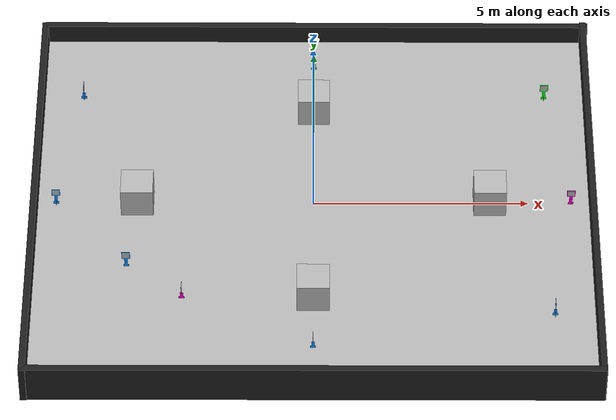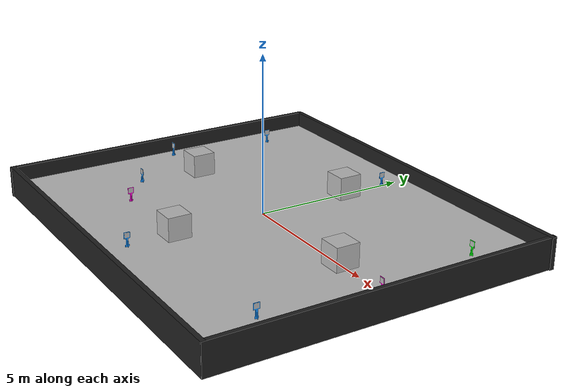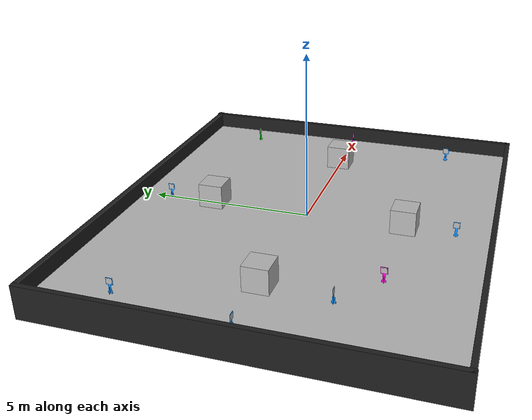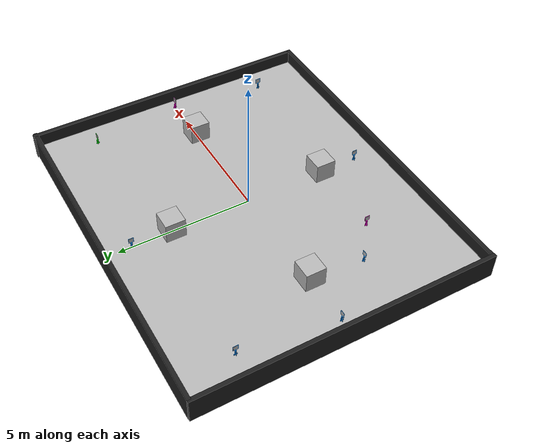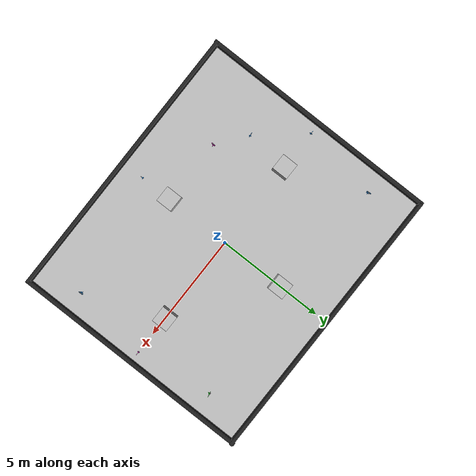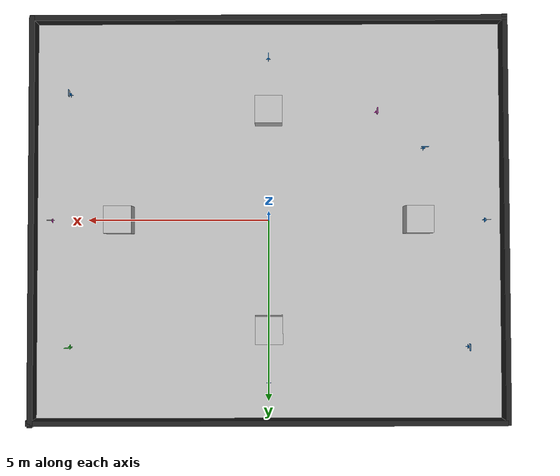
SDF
<sdf version="1.4">
  <world name="default">
    <scene>
      <ambient>0.8 0.8 0.8 1</ambient>
      <background>0.7 0.7 0.7 1</background>
      <shadows>true</shadows>
    </scene>

    <!-- A global light source -->
    <include>
      <uri>model://sun</uri>
      <pose> -2.0 2.0 2.0 0 0 0</pose>
    </include>

  <!-- Piso da sala - circuito -->
    <include>
      <uri>model://sala404_circuito/pisosala</uri>
      <pose> 0 0 0 0 0 -1.57</pose>
    </include>

 <!-- cat -->
    <include>
      <uri>model://sala404_circuito/objeto/cat</uri>
      <pose> 4.1 0 0.375 0 0 1.57</pose>
    </include>

 <!-- bird -->
    <include>
      <uri>model://sala404_circuito/objeto/bird</uri>
      <pose> -4.1 0 0.375 0 0 1.57</pose>
    </include>

 <!-- bicycle -->
    <include>
      <uri>model://sala404_circuito/objeto/bicycle</uri>
      <pose> 0 3 0.375 0 0 1.57</pose>
    </include>

<!-- dog -->
    <include>
      <uri>model://sala404_circuito/objeto/dog</uri>
      <pose> 0 -3 0.375 0 0 1.57</pose>
    </include>

 <!-- creeper11 -->
    <include>
      <uri>model://sala404_circuito/creeper/creeper11</uri>
      <pose> 0 4.5 0.13 0 0 0</pose>
    </include>
 <!-- creeper12 -->
    <include>
      <uri>model://sala404_circuito/creeper/creeper12</uri>
      <pose> -6 0 0.13 0 0 1.57</pose>
    </include>
 <!-- creeper13 -->
    <include>
      <uri>model://sala404_circuito/creeper/creeper13</uri>
      <pose> 5.5 -3.5 0.13 0 0 0</pose>
    </include>

 <!-- creeper21 -->
    <include>
      <uri>model://sala404_circuito/creeper/creeper21</uri>
      <pose> 6 0 0.13 0 0 1.57</pose>
    </include>
 <!-- creeper22 -->
    <include>
      <uri>model://sala404_circuito/creeper/creeper22</uri>
      <pose> -5.5 3.5 0.13 0 0 0</pose>
    </include>
 <!-- creeper23 -->
    <include>
      <uri>model://sala404_circuito/creeper/creeper23</uri>
      <pose> -3 -3 0.13 0 0 0</pose>
    </include>

 <!-- creeper31 -->
    <include>
      <uri>model://sala404_circuito/creeper/creeper31</uri>
      <pose> 5.5 3.5 0.13 0 0 1.57</pose>
    </include>
 <!-- creeper32 -->
    <include>
      <uri>model://sala404_circuito/creeper/creeper32</uri>
      <pose> 0 -4.5 0.13 0 0 0</pose>
    </include>
 <!-- creeper33 -->
    <include>
      <uri>model://sala404_circuito/creeper/creeper33</uri>
      <pose> -4.3 -2 0.13 0 0 1.57</pose>
    </include>

<!-- mapa sala -->
    <include>
      <uri>model://sala404_circuito/parede</uri>
      <pose> 0 0 0 0 0 0</pose>
    </include>

    <physics type="ode">
      <real_time_update_rate>1000.0</real_time_update_rate>
      <max_step_size>0.001</max_step_size>
      <real_time_factor>1</real_time_factor>
      <ode>
        <solver>
          <type>quick</type>
          <iters>150</iters>
          <precon_iters>0</precon_iters>
          <sor>1.400000</sor>
          <use_dynamic_moi_rescaling>1</use_dynamic_moi_rescaling>
        </solver>
        <constraints>
          <cfm>0.00001</cfm>
          <erp>0.2</erp>
          <contact_max_correcting_vel>2000.000000</contact_max_correcting_vel>
          <contact_surface_layer>0.01000</contact_surface_layer>
        </constraints>
      </ode>
    </physics>

    <gui fullscreen='0'>
      <camera name='user_camera'>
        <pose frame=''>0.238775 -6.8831 10.8485 -0 0.979642 1.5602</pose>
        <view_controller>orbit</view_controller>
        <projection_type>perspective</projection_type>
      </camera>
    </gui>

  </world>

</sdf>

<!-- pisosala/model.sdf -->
<sdf version="1.6">
  <model name="pisosala_forca">
    <static>true</static>
    <link name="course_link">
      <collision name="course_collision">
        <geometry>
          <plane>
            <normal>0 0 1</normal>
            <size>10 13</size>
          </plane>
        </geometry>
        <surface>
          <friction>
            <ode>
              <mu>100</mu>
              <mu2>50</mu2>
            </ode>
          </friction>
        </surface>
      </collision>
      <visual name="course_visual">
        <cast_shadows>false</cast_shadows>
        <geometry>
          <mesh>
            <uri>model://forca/pisosala/materials/scripts/piso.dae</uri>
            <scale>1 1 1</scale>
          </mesh>
        </geometry>
      </visual>
    </link>
  </model>
</sdf>

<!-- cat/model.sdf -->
<sdf version="1.6">
  <model name="cat">
    <static>true</static>
    <link name="box">
      <pose>0 0 0 0 0 0</pose>
      <collision name="collision">
        <geometry>
          <box>
            <size>0.75 0.75 0.75</size>
          </box>
        </geometry>
      </collision>
      <visual name="visual">
        <geometry>
          <box>
            <size>0.75 0.75 0.75</size>
          </box>
        </geometry>
        <material>
          <script>
            <uri>model://sala404_circuito/objeto/cat/materials/scripts</uri>
            <uri>model://sala404_circuito/objeto/cat/materials/textures</uri>
            <name>cat</name>
          </script>
        </material>
      </visual>
    </link>
  </model>
</sdf>

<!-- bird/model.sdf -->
<sdf version="1.6">
  <model name="bird">
    <static>true</static>
    <link name="box">
      <pose>0 0 0 0 0 0</pose>
      <collision name="collision">
        <geometry>
          <box>
            <size>0.75 0.75 0.75</size>
          </box>
        </geometry>
      </collision>
      <visual name="visual">
        <geometry>
          <box>
            <size>0.75 0.75 0.75</size>
          </box>
        </geometry>
        <material>
          <script>
            <uri>model://sala404_circuito/objeto/bird/materials/scripts</uri>
            <uri>model://sala404_circuito/objeto/bird/materials/textures</uri>
            <name>bird</name>
          </script>
        </material>
      </visual>
    </link>
  </model>
</sdf>

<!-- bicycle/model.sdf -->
<sdf version="1.6">
  <model name="bicycle">
    <static>true</static>
    <link name="box">
      <pose>0 0 0 0 0 0</pose>
      <collision name="collision">
        <geometry>
          <box>
            <size>0.75 0.75 0.75</size>
          </box>
        </geometry>
      </collision>
      <visual name="visual">
        <geometry>
          <box>
            <size>0.75 0.75 0.75</size>
          </box>
        </geometry>
        <material>
          <script>
            <uri>model://sala404_circuito/objeto/bicycle/materials/scripts</uri>
            <uri>model://sala404_circuito/objeto/bicycle/materials/textures</uri>
            <name>bicycle</name>
          </script>
        </material>
      </visual>
    </link>
  </model>
</sdf>

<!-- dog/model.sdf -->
<sdf version="1.6">
  <model name="dog">
    <static>true</static>
    <link name="box">
      <pose>0 0 0 0 0 0</pose>
      <collision name="collision">
        <geometry>
          <box>
            <size>0.75 0.75 0.75</size>
          </box>
        </geometry>
      </collision>
      <visual name="visual">
        <geometry>
          <box>
            <size>0.75 0.75 0.75</size>
          </box>
        </geometry>
        <material>
          <script>
            <uri>model://sala404_circuito/objeto/dog/materials/scripts</uri>
            <uri>model://sala404_circuito/objeto/dog/materials/textures</uri>
            <name>dog</name>
          </script>
        </material>
      </visual>
    </link>
  </model>
</sdf>

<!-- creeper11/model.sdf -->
<sdf version='1.6'>
  <model name='creeper01'>
    <link name='link_0'>
      <inertial>
        <mass>1</mass>
        <inertia>
          <ixx>0.166667</ixx>
          <ixy>0</ixy>
          <ixz>0</ixz>
          <iyy>0.166667</iyy>
          <iyz>0</iyz>
          <izz>0.166667</izz>
        </inertia>
      </inertial>
      <pose frame=''>5e-06 -5e-06 0 0 -0 0</pose>
      <visual name='visual'>
        <pose frame=''>0 0 0 0 -0 0</pose>
        <geometry>
          <mesh>
             <uri>model://sala404_circuito/creeper/creeper11/materials/textures/Creeper.dae</uri>
            <scale>1 1 1</scale>
          </mesh>
        </geometry>
        <material>
          <lighting>1</lighting>
        </material>
        <transparency>0</transparency>
        <cast_shadows>1</cast_shadows>
      </visual>
      <collision name='collision'>
        <laser_retro>0</laser_retro>
        <max_contacts>10</max_contacts>
        <pose frame=''>0 0 0 0 -0 0</pose>
        <geometry>
          <mesh>
             <uri>model://sala404_circuito/creeper/creeper11/materials/textures/Creeper.dae</uri>
            <scale>1 1 1</scale>
          </mesh>
        </geometry>
        <surface>
          <friction>
            <ode>
              <mu>1</mu>
              <mu2>1</mu2>
              <fdir1>0 0 0</fdir1>
              <slip1>0</slip1>
              <slip2>0</slip2>
            </ode>
            <torsional>
              <coefficient>1</coefficient>
              <patch_radius>0</patch_radius>
              <surface_radius>0</surface_radius>
              <use_patch_radius>1</use_patch_radius>
              <ode>
                <slip>0</slip>
              </ode>
            </torsional>
          </friction>
          <bounce>
            <restitution_coefficient>0</restitution_coefficient>
            <threshold>1e+06</threshold>
          </bounce>
          <contact>
            <collide_without_contact>0</collide_without_contact>
            <collide_without_contact_bitmask>1</collide_without_contact_bitmask>
            <collide_bitmask>1</collide_bitmask>
            <ode>
              <soft_cfm>0</soft_cfm>
              <soft_erp>0.2</soft_erp>
              <kp>1e+13</kp>
              <kd>1</kd>
              <max_vel>0.01</max_vel>
              <min_depth>0</min_depth>
            </ode>
            <bullet>
              <split_impulse>1</split_impulse>
              <split_impulse_penetration_threshold>-0.01</split_impulse_penetration_threshold>
              <soft_cfm>0</soft_cfm>
              <soft_erp>0.2</soft_erp>
              <kp>1e+13</kp>
              <kd>1</kd>
            </bullet>
          </contact>
        </surface>
      </collision>
    </link>
    <static>0</static>
    <allow_auto_disable>1</allow_auto_disable>
  </model>
</sdf>

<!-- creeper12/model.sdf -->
<sdf version='1.6'>
  <model name='creeper02'>
    <link name='link_0'>
      <inertial>
        <mass>1</mass>
        <inertia>
          <ixx>0.166667</ixx>
          <ixy>0</ixy>
          <ixz>0</ixz>
          <iyy>0.166667</iyy>
          <iyz>0</iyz>
          <izz>0.166667</izz>
        </inertia>
      </inertial>
      <pose frame=''>5e-06 -5e-06 0 0 -0 0</pose>
      <visual name='visual'>
        <pose frame=''>0 0 0 0 -0 0</pose>
        <geometry>
          <mesh>
             <uri>model://sala404_circuito/creeper/creeper12/materials/textures/Creeper.dae</uri>
            <scale>1 1 1</scale>
          </mesh>
        </geometry>
        <material>
          <lighting>1</lighting>
        </material>
        <transparency>0</transparency>
        <cast_shadows>1</cast_shadows>
      </visual>
      <collision name='collision'>
        <laser_retro>0</laser_retro>
        <max_contacts>10</max_contacts>
        <pose frame=''>0 0 0 0 -0 0</pose>
        <geometry>
          <mesh>
             <uri>model://sala404_circuito/creeper/creeper12/materials/textures/Creeper.dae</uri>
            <scale>1 1 1</scale>
          </mesh>
        </geometry>
        <surface>
          <friction>
            <ode>
              <mu>1</mu>
              <mu2>1</mu2>
              <fdir1>0 0 0</fdir1>
              <slip1>0</slip1>
              <slip2>0</slip2>
            </ode>
            <torsional>
              <coefficient>1</coefficient>
              <patch_radius>0</patch_radius>
              <surface_radius>0</surface_radius>
              <use_patch_radius>1</use_patch_radius>
              <ode>
                <slip>0</slip>
              </ode>
            </torsional>
          </friction>
          <bounce>
            <restitution_coefficient>0</restitution_coefficient>
            <threshold>1e+06</threshold>
          </bounce>
          <contact>
            <collide_without_contact>0</collide_without_contact>
            <collide_without_contact_bitmask>1</collide_without_contact_bitmask>
            <collide_bitmask>1</collide_bitmask>
            <ode>
              <soft_cfm>0</soft_cfm>
              <soft_erp>0.2</soft_erp>
              <kp>1e+13</kp>
              <kd>1</kd>
              <max_vel>0.01</max_vel>
              <min_depth>0</min_depth>
            </ode>
            <bullet>
              <split_impulse>1</split_impulse>
              <split_impulse_penetration_threshold>-0.01</split_impulse_penetration_threshold>
              <soft_cfm>0</soft_cfm>
              <soft_erp>0.2</soft_erp>
              <kp>1e+13</kp>
              <kd>1</kd>
            </bullet>
          </contact>
        </surface>
      </collision>
    </link>
    <static>0</static>
    <allow_auto_disable>1</allow_auto_disable>
  </model>
</sdf>

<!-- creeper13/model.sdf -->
<sdf version='1.6'>
  <model name='creeper03'>
    <link name='link_0'>
      <inertial>
        <mass>1</mass>
        <inertia>
          <ixx>0.166667</ixx>
          <ixy>0</ixy>
          <ixz>0</ixz>
          <iyy>0.166667</iyy>
          <iyz>0</iyz>
          <izz>0.166667</izz>
        </inertia>
      </inertial>
      <pose frame=''>5e-06 -5e-06 0 0 -0 0</pose>
      <visual name='visual'>
        <pose frame=''>0 0 0 0 -0 0</pose>
        <geometry>
          <mesh>
             <uri>model://sala404_circuito/creeper/creeper13/materials/textures/Creeper.dae</uri>
            <scale>1 1 1</scale>
          </mesh>
        </geometry>
        <material>
          <lighting>1</lighting>
        </material>
        <transparency>0</transparency>
        <cast_shadows>1</cast_shadows>
      </visual>
      <collision name='collision'>
        <laser_retro>0</laser_retro>
        <max_contacts>10</max_contacts>
        <pose frame=''>0 0 0 0 -0 0</pose>
        <geometry>
          <mesh>
             <uri>model://sala404_circuito/creeper/creeper13/materials/textures/Creeper.dae</uri>
            <scale>1 1 1</scale>
          </mesh>
        </geometry>
        <surface>
          <friction>
            <ode>
              <mu>1</mu>
              <mu2>1</mu2>
              <fdir1>0 0 0</fdir1>
              <slip1>0</slip1>
              <slip2>0</slip2>
            </ode>
            <torsional>
              <coefficient>1</coefficient>
              <patch_radius>0</patch_radius>
              <surface_radius>0</surface_radius>
              <use_patch_radius>1</use_patch_radius>
              <ode>
                <slip>0</slip>
              </ode>
            </torsional>
          </friction>
          <bounce>
            <restitution_coefficient>0</restitution_coefficient>
            <threshold>1e+06</threshold>
          </bounce>
          <contact>
            <collide_without_contact>0</collide_without_contact>
            <collide_without_contact_bitmask>1</collide_without_contact_bitmask>
            <collide_bitmask>1</collide_bitmask>
            <ode>
              <soft_cfm>0</soft_cfm>
              <soft_erp>0.2</soft_erp>
              <kp>1e+13</kp>
              <kd>1</kd>
              <max_vel>0.01</max_vel>
              <min_depth>0</min_depth>
            </ode>
            <bullet>
              <split_impulse>1</split_impulse>
              <split_impulse_penetration_threshold>-0.01</split_impulse_penetration_threshold>
              <soft_cfm>0</soft_cfm>
              <soft_erp>0.2</soft_erp>
              <kp>1e+13</kp>
              <kd>1</kd>
            </bullet>
          </contact>
        </surface>
      </collision>
    </link>
    <static>0</static>
    <allow_auto_disable>1</allow_auto_disable>
  </model>
</sdf>

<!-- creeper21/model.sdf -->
<sdf version='1.6'>
  <model name='creeper03'>
    <link name='link_0'>
      <inertial>
        <mass>1</mass>
        <inertia>
          <ixx>0.166667</ixx>
          <ixy>0</ixy>
          <ixz>0</ixz>
          <iyy>0.166667</iyy>
          <iyz>0</iyz>
          <izz>0.166667</izz>
        </inertia>
      </inertial>
      <pose frame=''>5e-06 -5e-06 0 0 -0 0</pose>
      <visual name='visual'>
        <pose frame=''>0 0 0 0 -0 0</pose>
        <geometry>
          <mesh>
             <uri>model://sala404_circuito/creeper/creeper21/materials/textures/Creeper.dae</uri>
            <scale>1 1 1</scale>
          </mesh>
        </geometry>
        <material>
          <lighting>1</lighting>
        </material>
        <transparency>0</transparency>
        <cast_shadows>1</cast_shadows>
      </visual>
      <collision name='collision'>
        <laser_retro>0</laser_retro>
        <max_contacts>10</max_contacts>
        <pose frame=''>0 0 0 0 -0 0</pose>
        <geometry>
          <mesh>
             <uri>model://sala404_circuito/creeper/creeper21/materials/textures/Creeper.dae</uri>
            <scale>1 1 1</scale>
          </mesh>
        </geometry>
        <surface>
          <friction>
            <ode>
              <mu>1</mu>
              <mu2>1</mu2>
              <fdir1>0 0 0</fdir1>
              <slip1>0</slip1>
              <slip2>0</slip2>
            </ode>
            <torsional>
              <coefficient>1</coefficient>
              <patch_radius>0</patch_radius>
              <surface_radius>0</surface_radius>
              <use_patch_radius>1</use_patch_radius>
              <ode>
                <slip>0</slip>
              </ode>
            </torsional>
          </friction>
          <bounce>
            <restitution_coefficient>0</restitution_coefficient>
            <threshold>1e+06</threshold>
          </bounce>
          <contact>
            <collide_without_contact>0</collide_without_contact>
            <collide_without_contact_bitmask>1</collide_without_contact_bitmask>
            <collide_bitmask>1</collide_bitmask>
            <ode>
              <soft_cfm>0</soft_cfm>
              <soft_erp>0.2</soft_erp>
              <kp>1e+13</kp>
              <kd>1</kd>
              <max_vel>0.01</max_vel>
              <min_depth>0</min_depth>
            </ode>
            <bullet>
              <split_impulse>1</split_impulse>
              <split_impulse_penetration_threshold>-0.01</split_impulse_penetration_threshold>
              <soft_cfm>0</soft_cfm>
              <soft_erp>0.2</soft_erp>
              <kp>1e+13</kp>
              <kd>1</kd>
            </bullet>
          </contact>
        </surface>
      </collision>
    </link>
    <static>0</static>
    <allow_auto_disable>1</allow_auto_disable>
  </model>
</sdf>

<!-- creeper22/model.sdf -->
<sdf version='1.6'>
  <model name='creeper03'>
    <link name='link_0'>
      <inertial>
        <mass>1</mass>
        <inertia>
          <ixx>0.166667</ixx>
          <ixy>0</ixy>
          <ixz>0</ixz>
          <iyy>0.166667</iyy>
          <iyz>0</iyz>
          <izz>0.166667</izz>
        </inertia>
      </inertial>
      <pose frame=''>5e-06 -5e-06 0 0 -0 0</pose>
      <visual name='visual'>
        <pose frame=''>0 0 0 0 -0 0</pose>
        <geometry>
          <mesh>
             <uri>model://sala404_circuito/creeper/creeper22/materials/textures/Creeper.dae</uri>
            <scale>1 1 1</scale>
          </mesh>
        </geometry>
        <material>
          <lighting>1</lighting>
        </material>
        <transparency>0</transparency>
        <cast_shadows>1</cast_shadows>
      </visual>
      <collision name='collision'>
        <laser_retro>0</laser_retro>
        <max_contacts>10</max_contacts>
        <pose frame=''>0 0 0 0 -0 0</pose>
        <geometry>
          <mesh>
             <uri>model://sala404_circuito/creeper/creeper22/materials/textures/Creeper.dae</uri>
            <scale>1 1 1</scale>
          </mesh>
        </geometry>
        <surface>
          <friction>
            <ode>
              <mu>1</mu>
              <mu2>1</mu2>
              <fdir1>0 0 0</fdir1>
              <slip1>0</slip1>
              <slip2>0</slip2>
            </ode>
            <torsional>
              <coefficient>1</coefficient>
              <patch_radius>0</patch_radius>
              <surface_radius>0</surface_radius>
              <use_patch_radius>1</use_patch_radius>
              <ode>
                <slip>0</slip>
              </ode>
            </torsional>
          </friction>
          <bounce>
            <restitution_coefficient>0</restitution_coefficient>
            <threshold>1e+06</threshold>
          </bounce>
          <contact>
            <collide_without_contact>0</collide_without_contact>
            <collide_without_contact_bitmask>1</collide_without_contact_bitmask>
            <collide_bitmask>1</collide_bitmask>
            <ode>
              <soft_cfm>0</soft_cfm>
              <soft_erp>0.2</soft_erp>
              <kp>1e+13</kp>
              <kd>1</kd>
              <max_vel>0.01</max_vel>
              <min_depth>0</min_depth>
            </ode>
            <bullet>
              <split_impulse>1</split_impulse>
              <split_impulse_penetration_threshold>-0.01</split_impulse_penetration_threshold>
              <soft_cfm>0</soft_cfm>
              <soft_erp>0.2</soft_erp>
              <kp>1e+13</kp>
              <kd>1</kd>
            </bullet>
          </contact>
        </surface>
      </collision>
    </link>
    <static>0</static>
    <allow_auto_disable>1</allow_auto_disable>
  </model>
</sdf>

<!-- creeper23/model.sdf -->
<sdf version='1.6'>
  <model name='creeper03'>
    <link name='link_0'>
      <inertial>
        <mass>1</mass>
        <inertia>
          <ixx>0.166667</ixx>
          <ixy>0</ixy>
          <ixz>0</ixz>
          <iyy>0.166667</iyy>
          <iyz>0</iyz>
          <izz>0.166667</izz>
        </inertia>
      </inertial>
      <pose frame=''>5e-06 -5e-06 0 0 -0 0</pose>
      <visual name='visual'>
        <pose frame=''>0 0 0 0 -0 0</pose>
        <geometry>
          <mesh>
             <uri>model://sala404_circuito/creeper/creeper23/materials/textures/Creeper.dae</uri>
            <scale>1 1 1</scale>
          </mesh>
        </geometry>
        <material>
          <lighting>1</lighting>
        </material>
        <transparency>0</transparency>
        <cast_shadows>1</cast_shadows>
      </visual>
      <collision name='collision'>
        <laser_retro>0</laser_retro>
        <max_contacts>10</max_contacts>
        <pose frame=''>0 0 0 0 -0 0</pose>
        <geometry>
          <mesh>
             <uri>model://sala404_circuito/creeper/creeper23/materials/textures/Creeper.dae</uri>
            <scale>1 1 1</scale>
          </mesh>
        </geometry>
        <surface>
          <friction>
            <ode>
              <mu>1</mu>
              <mu2>1</mu2>
              <fdir1>0 0 0</fdir1>
              <slip1>0</slip1>
              <slip2>0</slip2>
            </ode>
            <torsional>
              <coefficient>1</coefficient>
              <patch_radius>0</patch_radius>
              <surface_radius>0</surface_radius>
              <use_patch_radius>1</use_patch_radius>
              <ode>
                <slip>0</slip>
              </ode>
            </torsional>
          </friction>
          <bounce>
            <restitution_coefficient>0</restitution_coefficient>
            <threshold>1e+06</threshold>
          </bounce>
          <contact>
            <collide_without_contact>0</collide_without_contact>
            <collide_without_contact_bitmask>1</collide_without_contact_bitmask>
            <collide_bitmask>1</collide_bitmask>
            <ode>
              <soft_cfm>0</soft_cfm>
              <soft_erp>0.2</soft_erp>
              <kp>1e+13</kp>
              <kd>1</kd>
              <max_vel>0.01</max_vel>
              <min_depth>0</min_depth>
            </ode>
            <bullet>
              <split_impulse>1</split_impulse>
              <split_impulse_penetration_threshold>-0.01</split_impulse_penetration_threshold>
              <soft_cfm>0</soft_cfm>
              <soft_erp>0.2</soft_erp>
              <kp>1e+13</kp>
              <kd>1</kd>
            </bullet>
          </contact>
        </surface>
      </collision>
    </link>
    <static>0</static>
    <allow_auto_disable>1</allow_auto_disable>
  </model>
</sdf>

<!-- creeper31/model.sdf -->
<sdf version='1.6'>
  <model name='creeper03'>
    <link name='link_0'>
      <inertial>
        <mass>1</mass>
        <inertia>
          <ixx>0.166667</ixx>
          <ixy>0</ixy>
          <ixz>0</ixz>
          <iyy>0.166667</iyy>
          <iyz>0</iyz>
          <izz>0.166667</izz>
        </inertia>
      </inertial>
      <pose frame=''>5e-06 -5e-06 0 0 -0 0</pose>
      <visual name='visual'>
        <pose frame=''>0 0 0 0 -0 0</pose>
        <geometry>
          <mesh>
            <uri>model://sala404_circuito/creeper/creeper31/materials/textures/Creeper.dae</uri>
            <scale>1 1 1</scale>
          </mesh>
        </geometry>
        <material>
          <lighting>1</lighting>
        </material>
        <transparency>0</transparency>
        <cast_shadows>1</cast_shadows>
      </visual>
      <collision name='collision'>
        <laser_retro>0</laser_retro>
        <max_contacts>10</max_contacts>
        <pose frame=''>0 0 0 0 -0 0</pose>
        <geometry>
          <mesh>
             <uri>model://sala404_circuito/creeper/creeper31/materials/textures/Creeper.dae</uri>
            <scale>1 1 1</scale>
          </mesh>
        </geometry>
        <surface>
          <friction>
            <ode>
              <mu>1</mu>
              <mu2>1</mu2>
              <fdir1>0 0 0</fdir1>
              <slip1>0</slip1>
              <slip2>0</slip2>
            </ode>
            <torsional>
              <coefficient>1</coefficient>
              <patch_radius>0</patch_radius>
              <surface_radius>0</surface_radius>
              <use_patch_radius>1</use_patch_radius>
              <ode>
                <slip>0</slip>
              </ode>
            </torsional>
          </friction>
          <bounce>
            <restitution_coefficient>0</restitution_coefficient>
            <threshold>1e+06</threshold>
          </bounce>
          <contact>
            <collide_without_contact>0</collide_without_contact>
            <collide_without_contact_bitmask>1</collide_without_contact_bitmask>
            <collide_bitmask>1</collide_bitmask>
            <ode>
              <soft_cfm>0</soft_cfm>
              <soft_erp>0.2</soft_erp>
              <kp>1e+13</kp>
              <kd>1</kd>
              <max_vel>0.01</max_vel>
              <min_depth>0</min_depth>
            </ode>
            <bullet>
              <split_impulse>1</split_impulse>
              <split_impulse_penetration_threshold>-0.01</split_impulse_penetration_threshold>
              <soft_cfm>0</soft_cfm>
              <soft_erp>0.2</soft_erp>
              <kp>1e+13</kp>
              <kd>1</kd>
            </bullet>
          </contact>
        </surface>
      </collision>
    </link>
    <static>0</static>
    <allow_auto_disable>1</allow_auto_disable>
  </model>
</sdf>

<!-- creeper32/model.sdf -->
<sdf version='1.6'>
  <model name='creeper03'>
    <link name='link_0'>
      <inertial>
        <mass>1</mass>
        <inertia>
          <ixx>0.166667</ixx>
          <ixy>0</ixy>
          <ixz>0</ixz>
          <iyy>0.166667</iyy>
          <iyz>0</iyz>
          <izz>0.166667</izz>
        </inertia>
      </inertial>
      <pose frame=''>5e-06 -5e-06 0 0 -0 0</pose>
      <visual name='visual'>
        <pose frame=''>0 0 0 0 -0 0</pose>
        <geometry>
          <mesh>
            <uri>model://sala404_circuito/creeper/creeper32/materials/textures/Creeper.dae</uri>
            <scale>1 1 1</scale>
          </mesh>
        </geometry>
        <material>
          <lighting>1</lighting>
        </material>
        <transparency>0</transparency>
        <cast_shadows>1</cast_shadows>
      </visual>
      <collision name='collision'>
        <laser_retro>0</laser_retro>
        <max_contacts>10</max_contacts>
        <pose frame=''>0 0 0 0 -0 0</pose>
        <geometry>
          <mesh>
             <uri>model://sala404_circuito/creeper/creeper32/materials/textures/Creeper.dae</uri>
            <scale>1 1 1</scale>
          </mesh>
        </geometry>
        <surface>
          <friction>
            <ode>
              <mu>1</mu>
              <mu2>1</mu2>
              <fdir1>0 0 0</fdir1>
              <slip1>0</slip1>
              <slip2>0</slip2>
            </ode>
            <torsional>
              <coefficient>1</coefficient>
              <patch_radius>0</patch_radius>
              <surface_radius>0</surface_radius>
              <use_patch_radius>1</use_patch_radius>
              <ode>
                <slip>0</slip>
              </ode>
            </torsional>
          </friction>
          <bounce>
            <restitution_coefficient>0</restitution_coefficient>
            <threshold>1e+06</threshold>
          </bounce>
          <contact>
            <collide_without_contact>0</collide_without_contact>
            <collide_without_contact_bitmask>1</collide_without_contact_bitmask>
            <collide_bitmask>1</collide_bitmask>
            <ode>
              <soft_cfm>0</soft_cfm>
              <soft_erp>0.2</soft_erp>
              <kp>1e+13</kp>
              <kd>1</kd>
              <max_vel>0.01</max_vel>
              <min_depth>0</min_depth>
            </ode>
            <bullet>
              <split_impulse>1</split_impulse>
              <split_impulse_penetration_threshold>-0.01</split_impulse_penetration_threshold>
              <soft_cfm>0</soft_cfm>
              <soft_erp>0.2</soft_erp>
              <kp>1e+13</kp>
              <kd>1</kd>
            </bullet>
          </contact>
        </surface>
      </collision>
    </link>
    <static>0</static>
    <allow_auto_disable>1</allow_auto_disable>
  </model>
</sdf>

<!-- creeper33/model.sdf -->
<sdf version='1.6'>
  <model name='creeper03'>
    <link name='link_0'>
      <inertial>
        <mass>1</mass>
        <inertia>
          <ixx>0.166667</ixx>
          <ixy>0</ixy>
          <ixz>0</ixz>
          <iyy>0.166667</iyy>
          <iyz>0</iyz>
          <izz>0.166667</izz>
        </inertia>
      </inertial>
      <pose frame=''>5e-06 -5e-06 0 0 -0 0</pose>
      <visual name='visual'>
        <pose frame=''>0 0 0 0 -0 0</pose>
        <geometry>
          <mesh>
             <uri>model://sala404_circuito/creeper/creeper33/materials/textures/Creeper.dae</uri>
            <scale>1 1 1</scale>
          </mesh>
        </geometry>
        <material>
          <lighting>1</lighting>
        </material>
        <transparency>0</transparency>
        <cast_shadows>1</cast_shadows>
      </visual>
      <collision name='collision'>
        <laser_retro>0</laser_retro>
        <max_contacts>10</max_contacts>
        <pose frame=''>0 0 0 0 -0 0</pose>
        <geometry>
          <mesh>
             <uri>model://sala404_circuito/creeper/creeper33/materials/textures/Creeper.dae</uri>
            <scale>1 1 1</scale>
          </mesh>
        </geometry>
        <surface>
          <friction>
            <ode>
              <mu>1</mu>
              <mu2>1</mu2>
              <fdir1>0 0 0</fdir1>
              <slip1>0</slip1>
              <slip2>0</slip2>
            </ode>
            <torsional>
              <coefficient>1</coefficient>
              <patch_radius>0</patch_radius>
              <surface_radius>0</surface_radius>
              <use_patch_radius>1</use_patch_radius>
              <ode>
                <slip>0</slip>
              </ode>
            </torsional>
          </friction>
          <bounce>
            <restitution_coefficient>0</restitution_coefficient>
            <threshold>1e+06</threshold>
          </bounce>
          <contact>
            <collide_without_contact>0</collide_without_contact>
            <collide_without_contact_bitmask>1</collide_without_contact_bitmask>
            <collide_bitmask>1</collide_bitmask>
            <ode>
              <soft_cfm>0</soft_cfm>
              <soft_erp>0.2</soft_erp>
              <kp>1e+13</kp>
              <kd>1</kd>
              <max_vel>0.01</max_vel>
              <min_depth>0</min_depth>
            </ode>
            <bullet>
              <split_impulse>1</split_impulse>
              <split_impulse_penetration_threshold>-0.01</split_impulse_penetration_threshold>
              <soft_cfm>0</soft_cfm>
              <soft_erp>0.2</soft_erp>
              <kp>1e+13</kp>
              <kd>1</kd>
            </bullet>
          </contact>
        </surface>
      </collision>
    </link>
    <static>0</static>
    <allow_auto_disable>1</allow_auto_disable>
  </model>
</sdf>

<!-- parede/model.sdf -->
<sdf version='1.6'>
  <model name='parede'>
    <link name='Wall_0'>
      <pose frame=''>-0.004951 -5.56026 0 0 -0 0</pose>
      <self_collide>0</self_collide>
      <enable_wind>0</enable_wind>
      <kinematic>0</kinematic>
      <inertial>
        <inertia>
          <ixx>0</ixx>
          <ixy>0</ixy>
          <ixz>0</ixz>
          <iyy>0</iyy>
          <iyz>0</iyz>
          <izz>0</izz>
        </inertia>
        <mass>0</mass>
        <pose frame=''>0 0 0 0 -0 0</pose>
      </inertial>
      <gravity>1</gravity>
      <visual name='Wall_0_Visual'>
        <pose frame=''>0 0 0 0 -0 0</pose>
        <geometry>
          <box>
            <size>13.1161 0.15 1.0</size>
          </box>
        </geometry>
        <material>
          <script>
            <uri>file://media/materials/scripts/gazebo.material</uri>
            <name>Gazebo/Black</name>
          </script>
          <ambient>0 0 0 1</ambient>
          <shader type='vertex'>
            <normal_map>__default__</normal_map>
          </shader>
          <diffuse>0 0 0 1</diffuse>
          <specular>0 0 0 1</specular>
          <emissive>0 0 0 1</emissive>
        </material>
        <meta>
          <layer>0</layer>
        </meta>
        <transparency>0</transparency>
        <cast_shadows>1</cast_shadows>
      </visual>
      <collision name='Wall_0_Collision'>
        <laser_retro>0</laser_retro>
        <max_contacts>10</max_contacts>
        <pose frame=''>0 0 0 0 -0 0</pose>
        <geometry>
          <box>
            <size>13.1161 0.15 1.0</size>
          </box>
        </geometry>
        <surface>
          <friction>
            <ode>
              <mu>1</mu>
              <mu2>1</mu2>
              <fdir1>0 0 0</fdir1>
              <slip1>0</slip1>
              <slip2>0</slip2>
            </ode>
            <torsional>
              <coefficient>1</coefficient>
              <patch_radius>0</patch_radius>
              <surface_radius>0</surface_radius>
              <use_patch_radius>1</use_patch_radius>
              <ode>
                <slip>0</slip>
              </ode>
            </torsional>
          </friction>
          <bounce>
            <restitution_coefficient>0</restitution_coefficient>
            <threshold>1e+06</threshold>
          </bounce>
          <contact>
            <collide_without_contact>0</collide_without_contact>
            <collide_without_contact_bitmask>1</collide_without_contact_bitmask>
            <collide_bitmask>1</collide_bitmask>
            <ode>
              <soft_cfm>0</soft_cfm>
              <soft_erp>0.2</soft_erp>
              <kp>1e+13</kp>
              <kd>1</kd>
              <max_vel>0.01</max_vel>
              <min_depth>0</min_depth>
            </ode>
            <bullet>
              <split_impulse>1</split_impulse>
              <split_impulse_penetration_threshold>-0.01</split_impulse_penetration_threshold>
              <soft_cfm>0</soft_cfm>
              <soft_erp>0.2</soft_erp>
              <kp>1e+13</kp>
              <kd>1</kd>
            </bullet>
          </contact>
        </surface>
      </collision>
    </link>
    <link name='Wall_1'>
      <pose frame=''>0.061052 5.53717 0 0 -0 3.14</pose>
      <self_collide>0</self_collide>
      <enable_wind>0</enable_wind>
      <kinematic>0</kinematic>
      <inertial>
        <inertia>
          <ixx>0</ixx>
          <ixy>0</ixy>
          <ixz>0</ixz>
          <iyy>0</iyy>
          <iyz>0</iyz>
          <izz>0</izz>
        </inertia>
        <mass>0</mass>
        <pose frame=''>0 0 0 0 -0 0</pose>
      </inertial>
      <gravity>1</gravity>
      <visual name='Wall_1_Visual'>
        <pose frame=''>0 0 0 0 -0 0</pose>
        <geometry>
          <box>
            <size>13.1161 0.15 1.0</size>
          </box>
        </geometry>
        <material>
          <script>
            <uri>file://media/materials/scripts/gazebo.material</uri>
            <name>Gazebo/Black</name>
          </script>
          <ambient>0 0 0 1</ambient>
          <shader type='vertex'>
            <normal_map>__default__</normal_map>
          </shader>
          <diffuse>0 0 0 1</diffuse>
          <specular>0 0 0 1</specular>
          <emissive>0 0 0 1</emissive>
        </material>
        <meta>
          <layer>0</layer>
        </meta>
        <transparency>0</transparency>
        <cast_shadows>1</cast_shadows>
      </visual>
      <collision name='Wall_1_Collision'>
        <laser_retro>0</laser_retro>
        <max_contacts>10</max_contacts>
        <pose frame=''>0 0 0 0 -0 0</pose>
        <geometry>
          <box>
            <size>13.1161 0.15 1.0</size>
          </box>
        </geometry>
        <surface>
          <friction>
            <ode>
              <mu>1</mu>
              <mu2>1</mu2>
              <fdir1>0 0 0</fdir1>
              <slip1>0</slip1>
              <slip2>0</slip2>
            </ode>
            <torsional>
              <coefficient>1</coefficient>
              <patch_radius>0</patch_radius>
              <surface_radius>0</surface_radius>
              <use_patch_radius>1</use_patch_radius>
              <ode>
                <slip>0</slip>
              </ode>
            </torsional>
          </friction>
          <bounce>
            <restitution_coefficient>0</restitution_coefficient>
            <threshold>1e+06</threshold>
          </bounce>
          <contact>
            <collide_without_contact>0</collide_without_contact>
            <collide_without_contact_bitmask>1</collide_without_contact_bitmask>
            <collide_bitmask>1</collide_bitmask>
            <ode>
              <soft_cfm>0</soft_cfm>
              <soft_erp>0.2</soft_erp>
              <kp>1e+13</kp>
              <kd>1</kd>
              <max_vel>0.01</max_vel>
              <min_depth>0</min_depth>
            </ode>
            <bullet>
              <split_impulse>1</split_impulse>
              <split_impulse_penetration_threshold>-0.01</split_impulse_penetration_threshold>
              <soft_cfm>0</soft_cfm>
              <soft_erp>0.2</soft_erp>
              <kp>1e+13</kp>
              <kd>1</kd>
            </bullet>
          </contact>
        </surface>
      </collision>
    </link>
    <link name='Wall_2'>
      <pose frame=''>6.5 0.005899 0 0 -0 1.57</pose>
      <self_collide>0</self_collide>
      <enable_wind>0</enable_wind>
      <kinematic>0</kinematic>
      <inertial>
        <inertia>
          <ixx>0</ixx>
          <ixy>0</ixy>
          <ixz>0</ixz>
          <iyy>0</iyy>
          <iyz>0</iyz>
          <izz>0</izz>
        </inertia>
        <mass>0</mass>
        <pose frame=''>0 0 0 0 -0 0</pose>
      </inertial>
      <gravity>1</gravity>
      <visual name='Wall_2_Visual'>
        <pose frame=''>0 0 0 0 -0 0</pose>
        <geometry>
          <box>
            <size>11.2703 0.15 1.0</size>
          </box>
        </geometry>
        <material>
          <script>
            <uri>file://media/materials/scripts/gazebo.material</uri>
            <name>Gazebo/Black</name>
          </script>
          <ambient>0 0 0 1</ambient>
          <shader type='vertex'>
            <normal_map>__default__</normal_map>
          </shader>
          <diffuse>0 0 0 1</diffuse>
          <specular>0 0 0 1</specular>
          <emissive>0 0 0 1</emissive>
        </material>
        <meta>
          <layer>0</layer>
        </meta>
        <transparency>0</transparency>
        <cast_shadows>1</cast_shadows>
      </visual>
      <collision name='Wall_2_Collision'>
        <laser_retro>0</laser_retro>
        <max_contacts>10</max_contacts>
        <pose frame=''>0 0 0 0 -0 0</pose>
        <geometry>
          <box>
            <size>11.2703 0.15 1.0</size>
          </box>
        </geometry>
        <surface>
          <friction>
            <ode>
              <mu>1</mu>
              <mu2>1</mu2>
              <fdir1>0 0 0</fdir1>
              <slip1>0</slip1>
              <slip2>0</slip2>
            </ode>
            <torsional>
              <coefficient>1</coefficient>
              <patch_radius>0</patch_radius>
              <surface_radius>0</surface_radius>
              <use_patch_radius>1</use_patch_radius>
              <ode>
                <slip>0</slip>
              </ode>
            </torsional>
          </friction>
          <bounce>
            <restitution_coefficient>0</restitution_coefficient>
            <threshold>1e+06</threshold>
          </bounce>
          <contact>
            <collide_without_contact>0</collide_without_contact>
            <collide_without_contact_bitmask>1</collide_without_contact_bitmask>
            <collide_bitmask>1</collide_bitmask>
            <ode>
              <soft_cfm>0</soft_cfm>
              <soft_erp>0.2</soft_erp>
              <kp>1e+13</kp>
              <kd>1</kd>
              <max_vel>0.01</max_vel>
              <min_depth>0</min_depth>
            </ode>
            <bullet>
              <split_impulse>1</split_impulse>
              <split_impulse_penetration_threshold>-0.01</split_impulse_penetration_threshold>
              <soft_cfm>0</soft_cfm>
              <soft_erp>0.2</soft_erp>
              <kp>1e+13</kp>
              <kd>1</kd>
            </bullet>
          </contact>
        </surface>
      </collision>
    </link>
    <link name='Wall_3'>
      <pose frame=''>-6.49998 -0.025026 0 0 0 -1.57</pose>
      <self_collide>0</self_collide>
      <enable_wind>0</enable_wind>
      <kinematic>0</kinematic>
      <inertial>
        <inertia>
          <ixx>0</ixx>
          <ixy>0</ixy>
          <ixz>0</ixz>
          <iyy>0</iyy>
          <iyz>0</iyz>
          <izz>0</izz>
        </inertia>
        <mass>0</mass>
        <pose frame=''>0 0 0 0 -0 0</pose>
      </inertial>
      <gravity>1</gravity>
      <visual name='Wall_3_Visual'>
        <pose frame=''>0 0 0 0 -0 0</pose>
        <geometry>
          <box>
            <size>11.2703 0.15 1.0</size>
          </box>
        </geometry>
        <material>
          <script>
            <uri>file://media/materials/scripts/gazebo.material</uri>
            <name>Gazebo/Black</name>
          </script>
          <ambient>0 0 0 1</ambient>
          <shader type='vertex'>
            <normal_map>__default__</normal_map>
          </shader>
          <diffuse>0 0 0 1</diffuse>
          <specular>0 0 0 1</specular>
          <emissive>0 0 0 1</emissive>
        </material>
        <meta>
          <layer>0</layer>
        </meta>
        <transparency>0</transparency>
        <cast_shadows>1</cast_shadows>
      </visual>
      <collision name='Wall_3_Collision'>
        <laser_retro>0</laser_retro>
        <max_contacts>10</max_contacts>
        <pose frame=''>0 0 0 0 -0 0</pose>
        <geometry>
          <box>
            <size>11.2703 0.15 1.0</size>
          </box>
        </geometry>
        <surface>
          <friction>
            <ode>
              <mu>1</mu>
              <mu2>1</mu2>
              <fdir1>0 0 0</fdir1>
              <slip1>0</slip1>
              <slip2>0</slip2>
            </ode>
            <torsional>
              <coefficient>1</coefficient>
              <patch_radius>0</patch_radius>
              <surface_radius>0</surface_radius>
              <use_patch_radius>1</use_patch_radius>
              <ode>
                <slip>0</slip>
              </ode>
            </torsional>
          </friction>
          <bounce>
            <restitution_coefficient>0</restitution_coefficient>
            <threshold>1e+06</threshold>
          </bounce>
          <contact>
            <collide_without_contact>0</collide_without_contact>
            <collide_without_contact_bitmask>1</collide_without_contact_bitmask>
            <collide_bitmask>1</collide_bitmask>
            <ode>
              <soft_cfm>0</soft_cfm>
              <soft_erp>0.2</soft_erp>
              <kp>1e+13</kp>
              <kd>1</kd>
              <max_vel>0.01</max_vel>
              <min_depth>0</min_depth>
            </ode>
            <bullet>
              <split_impulse>1</split_impulse>
              <split_impulse_penetration_threshold>-0.01</split_impulse_penetration_threshold>
              <soft_cfm>0</soft_cfm>
              <soft_erp>0.2</soft_erp>
              <kp>1e+13</kp>
              <kd>1</kd>
            </bullet>
          </contact>
        </surface>
      </collision>
    </link>
    <static>1</static>
    <allow_auto_disable>1</allow_auto_disable>
  </model>
</sdf>
